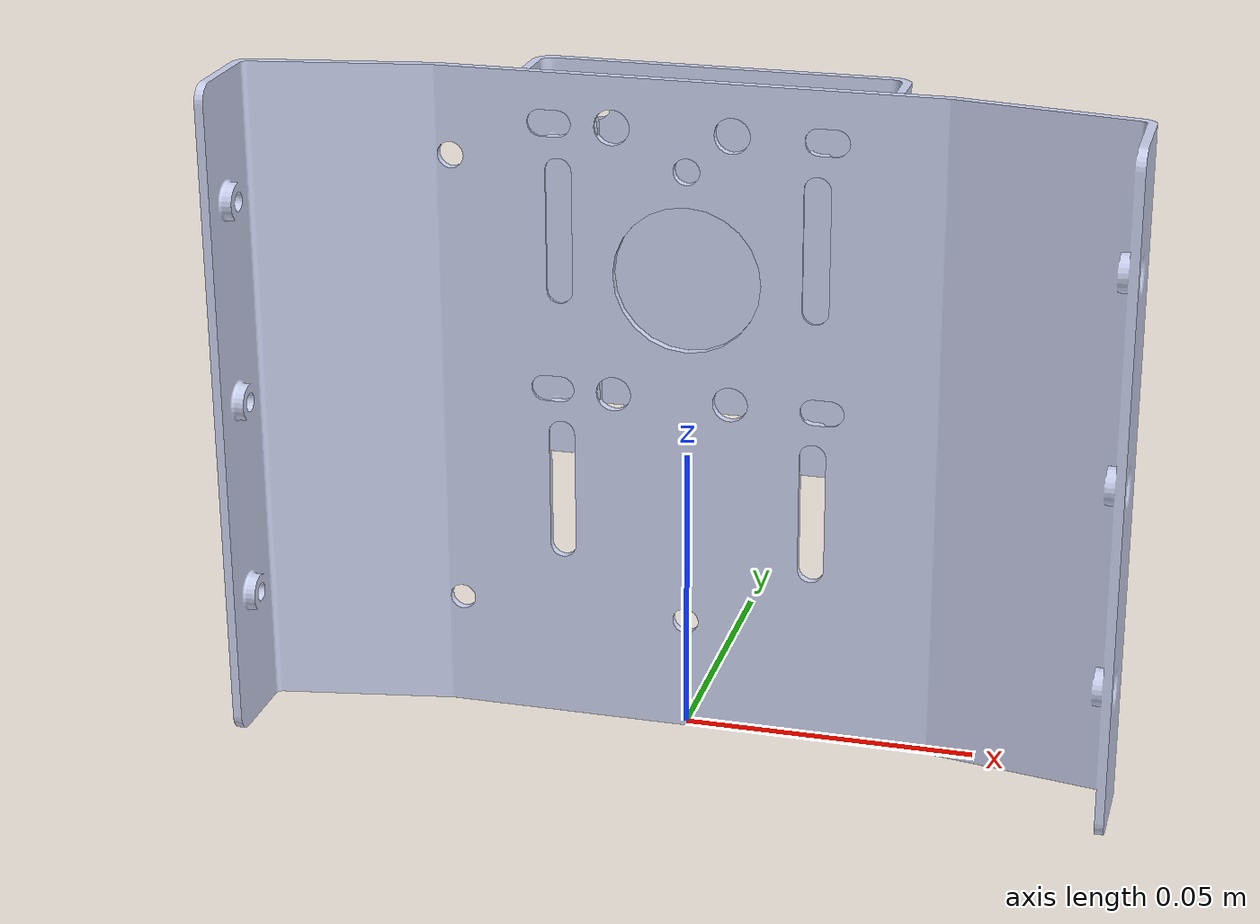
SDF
<?xml version="1.0" ?>
<sdf version="1.4">
  <model name="robotino_gripper_adapter">
    <link name="plate">
        <pose>0.0 0 0 1.570796 0 0</pose>
        <inertial>
            <inertia>
                <ixx>0.01</ixx>
                <ixy>0</ixy>
                <ixz>0</ixz>
                <iyy>0.01</iyy>
                <iyz>0</iyz>
                <izz>0.01</izz>
            </inertia>
            <mass>0.5</mass>
        </inertial>
      <visual name="visual">
        <pose>0 0 0 0 0 0</pose>
        <geometry>
          <mesh>
            <uri>model://robotino_gripper_adapter/meshes/robotino_gripper_plate.dae</uri>
          </mesh>
        </geometry>
        <cast_shadows>false</cast_shadows>
      </visual>
      <collision name="collision">
        <pose>0.0 0.0575 0.012 0 0 0</pose>
        <geometry>
		    <box>
                 <size>0.15 0.115 0.024</size>
		    </box>
        </geometry>
      </collision>
    </link>

    <link name="block">
        <pose>0.0 0.024 0.08 1.570796 0 3.1415</pose>
        <inertial>
            <inertia>
                <ixx>0.01</ixx>
                <ixy>0</ixy>
                <ixz>0</ixz>
                <iyy>0.01</iyy>
                <iyz>0</iyz>
                <izz>0.01</izz>
            </inertia>
            <mass>0.5</mass>
        </inertial>
      <visual name="visual">
        <pose>0 0 0 0 0 0</pose>
        <geometry>
          <mesh>
            <uri>model://robotino_gripper_adapter/meshes/robotino_gripper_block.dae</uri>
          </mesh>
        </geometry>
        <cast_shadows>false</cast_shadows>
      </visual>
      <collision name="collision">
        <pose>0.0 0 -0.012 0 0 0</pose>
        <geometry>
		    <box>
                 <size>0.065 0.06 0.024</size>
		    </box>
        </geometry>
      </collision>
    </link>

    <joint name="plate_block_joint" type="revolute">
        <child>block</child>
        <parent>plate</parent>
        <axis>
            <limit>
                <lower>0</lower>
                <upper>0</upper>
            </limit>
            <xyz>1 0 0</xyz>
        </axis>
    </joint>

  </model>
</sdf>
